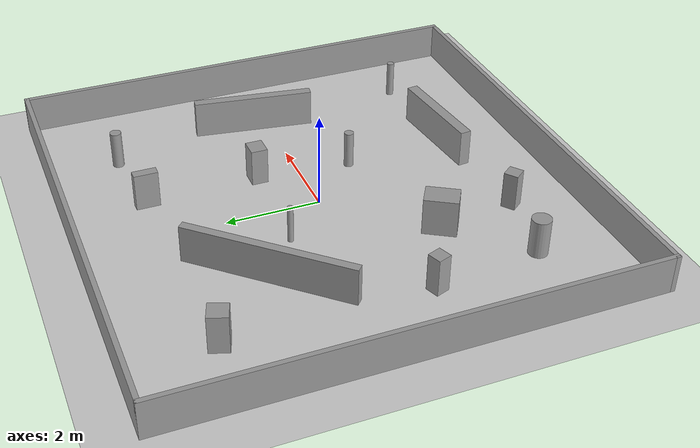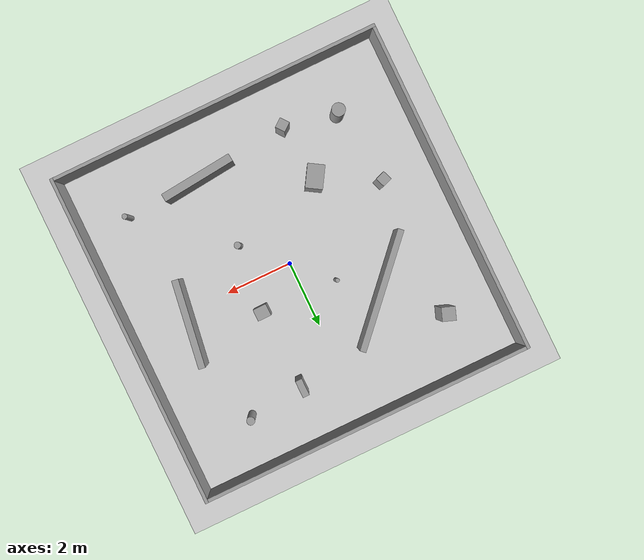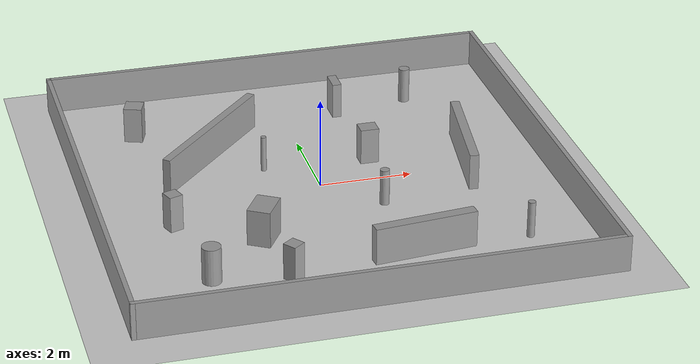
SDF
<sdf version="1.6">
 <world name="default">
  <light name="sun" type="directional">
   <cast_shadows>0</cast_shadows>
   <pose>0 0 10 0 -0 0</pose>
   <diffuse>0.8 0.8 0.8 1</diffuse>
   <specular>0.1 0.1 0.1 1</specular>
   <attenuation>
    <range>1000</range>
    <constant>0.9</constant>
    <linear>0.01</linear>
    <quadratic>0.001</quadratic>
   </attenuation>
   <direction>-0.5 0.5 -1</direction>
  </light>
  <model name="ground_plane">
   <static>1</static>
   <link name="link">
    <collision name="collision">
     <geometry><plane><normal>0 0 1</normal><size>100 100</size></plane></geometry>
     <surface><friction><ode><mu>100</mu><mu2>50</mu2></ode></friction></surface>
    </collision>
    <visual name="visual">
     <cast_shadows>0</cast_shadows>
     <geometry><plane><normal>0 0 1</normal><size>100 100</size></plane></geometry>
     <material>
      <script><uri>file://media/materials/scripts/gazebo.material</uri><name>Gazebo/Grey</name></script>
     </material>
    </visual>
   </link>
  </model>
  <gravity>0 0 -9.8</gravity>
  <magnetic_field>6e-06 2.3e-05 -4.2e-05</magnetic_field>
  <atmosphere type="adiabatic"/>
  <physics name="default_physics" default="0" type="ode">
   <max_step_size>0.001</max_step_size>
   <real_time_factor>1</real_time_factor>
   <real_time_update_rate>1000</real_time_update_rate>
  </physics>
  <scene><ambient>0.4 0.4 0.4 1</ambient><background>0.7 0.7 0.7 1</background><shadows>1</shadows></scene>
  <spherical_coordinates>
   <surface_model>EARTH_WGS84</surface_model>
   <latitude_deg>0</latitude_deg>
   <longitude_deg>0</longitude_deg>
   <elevation>0</elevation>
   <heading_deg>0</heading_deg>
  </spherical_coordinates>
  <model name="train_world1">
   <link name="Wall_0">
    <collision name="Wall_0_Collision">
     <geometry><box><size>10.1 0.1 0.8</size></box></geometry>
     <pose>0 0 0.4 0 -0 0</pose>
    </collision>
    <visual name="Wall_0_Visual">
     <pose>0 0 0.4 0 -0 0</pose>
     <geometry><box><size>10.1 0.1 0.8</size></box></geometry>
     <material>
      <script><uri>file://media/materials/scripts/gazebo.material</uri><name>Gazebo/Grey</name></script>
      <ambient>1 1 1 1</ambient>
     </material>
    </visual>
    <pose>5 0 0 0 0 -1.5708</pose>
   </link>
   <link name="Wall_1">
    <collision name="Wall_1_Collision">
     <geometry><box><size>10.10002 0.1 0.8</size></box></geometry>
     <pose>0 0 0.4 0 -0 0</pose>
    </collision>
    <visual name="Wall_1_Visual">
     <pose>0 0 0.4 0 -0 0</pose>
     <geometry><box><size>10.10002 0.1 0.8</size></box></geometry>
     <material>
      <script><uri>file://media/materials/scripts/gazebo.material</uri><name>Gazebo/Grey</name></script>
      <ambient>1 1 1 1</ambient>
     </material>
    </visual>
    <pose>0 -5 0 0 -0 3.14159</pose>
   </link>
   <link name="Wall_2">
    <collision name="Wall_2_Collision">
     <geometry><box><size>10.1 0.1 0.8</size></box></geometry>
     <pose>0 0 0.4 0 -0 0</pose>
    </collision>
    <visual name="Wall_2_Visual">
     <pose>0 0 0.4 0 -0 0</pose>
     <geometry><box><size>10.1 0.1 0.8</size></box></geometry>
     <material>
      <script><uri>file://media/materials/scripts/gazebo.material</uri><name>Gazebo/Grey</name></script>
      <ambient>1 1 1 1</ambient>
     </material>
    </visual>
    <pose>-5 0 0 0 -0 1.5708</pose>
   </link>
   <link name="Wall_3">
    <collision name="Wall_3_Collision">
     <geometry><box><size>10.1 0.1 0.8</size></box></geometry>
     <pose>0 0 0.4 0 -0 0</pose>
    </collision>
    <visual name="Wall_3_Visual">
     <pose>0 0 0.4 0 -0 0</pose>
     <geometry><box><size>10.1 0.1 0.8</size></box></geometry>
     <material>
      <script><uri>file://media/materials/scripts/gazebo.material</uri><name>Gazebo/Grey</name></script>
      <ambient>1 1 1 1</ambient>
     </material>
    </visual>
    <pose>0 5 0 0 -0 0</pose>
   </link>
   <link name="Box_0">
    <collision name="Box_0_Collision">
     <geometry><box><size>0.4 0.35 0.8</size></box></geometry>
     <pose>0 0 0.4 0 -0 0</pose>
    </collision>
    <visual name="Box_0_Visual">
     <pose>0 0 0.4 0 -0 0</pose>
     <geometry><box><size>0.4 0.35 0.8</size></box></geometry>
     <material>
      <script><uri>file://media/materials/scripts/gazebo.material</uri><name>Gazebo/Grey</name></script>
      <ambient>1 1 1 1</ambient>
     </material>
    </visual>
    <pose>1.3 0.9 0 0 0 0</pose>
   </link>
   <link name="Box_1">
    <collision name="Box_1_Collision">
     <geometry><box><size>0.2 0.5 0.8</size></box></geometry>
     <pose>0 0 0.4 0 -0 0</pose>
    </collision>
    <visual name="Box_1_Visual">
     <pose>0 0 0.4 0 -0 0</pose>
     <geometry><box><size>0.2 0.5 0.8</size></box></geometry>
     <material>
      <script><uri>file://media/materials/scripts/gazebo.material</uri><name>Gazebo/Grey</name></script>
      <ambient>1 1 1 1</ambient>
     </material>
    </visual>
    <pose>1.2 3.3 0 0 0 0</pose>
   </link>
   <link name="Box_2">
    <collision name="Box_2_Collision">
     <geometry><box><size>2.2 0.24 0.8</size></box></geometry>
     <pose>0 0 0.4 0 -0 0</pose>
    </collision>
    <visual name="Box_2_Visual">
     <pose>0 0 0.4 0 -0 0</pose>
     <geometry><box><size>2.2 0.24 0.8</size></box></geometry>
     <material>
      <script><uri>file://media/materials/scripts/gazebo.material</uri><name>Gazebo/Grey</name></script>
      <ambient>1 1 1 1</ambient>
     </material>
    </visual>
    <pose>1.3 -3.3 0 0 0 0.1</pose>
   </link>
   <link name="Box_3">
    <collision name="Box_3_Collision">
     <geometry><box><size>0.2 2.6 0.8</size></box></geometry>
     <pose>0 0 0.4 0 -0 0</pose>
    </collision>
    <visual name="Box_3_Visual">
     <pose>0 0 0.4 0 -0 0</pose>
     <geometry><box><size>0.2 2.6 0.8</size></box></geometry>
     <material>
      <script><uri>file://media/materials/scripts/gazebo.material</uri><name>Gazebo/Grey</name></script>
      <ambient>1 1 1 1</ambient>
     </material>
    </visual>
    <pose>3.3 0.3 0 0 0 -0.15</pose>
   </link>
   <link name="Box_4">
    <collision name="Box_4_Collision">
     <geometry><box><size>0.18 3.6 0.8</size></box></geometry>
     <pose>0 0 0.4 0 -0 0</pose>
    </collision>
    <visual name="Box_4_Visual">
     <pose>0 0 0.4 0 -0 0</pose>
     <geometry><box><size>0.18 3.6 0.8</size></box></geometry>
     <material>
      <script><uri>file://media/materials/scripts/gazebo.material</uri><name>Gazebo/Grey</name></script>
      <ambient>1 1 1 1</ambient>
     </material>
    </visual>
    <pose>-2.0 1.8 0 0 0 -0.75</pose>
   </link>
   <link name="Box_5">
    <collision name="Box_5_Collision">
     <geometry><box><size>0.5 0.7 0.8</size></box></geometry>
     <pose>0 0 0.4 0 -0 0</pose>
    </collision>
    <visual name="Box_5_Visual">
     <pose>0 0 0.4 0 -0 0</pose>
     <geometry><box><size>0.5 0.7 0.8</size></box></geometry>
     <material>
      <script><uri>file://media/materials/scripts/gazebo.material</uri><name>Gazebo/Grey</name></script>
      <ambient>1 1 1 1</ambient>
     </material>
    </visual>
    <pose>-1.7 -1.9 0 0 0 -0.55</pose>
   </link>
   <link name="Box_6">
    <collision name="Box_6_Collision">
     <geometry><box><size>0.4 0.4 0.8</size></box></geometry>
     <pose>0 0 0.4 0 -0 0</pose>
    </collision>
    <visual name="Box_6_Visual">
     <pose>0 0 0.4 0 -0 0</pose>
     <geometry><box><size>0.4 0.4 0.8</size></box></geometry>
     <material>
      <script><uri>file://media/materials/scripts/gazebo.material</uri><name>Gazebo/Grey</name></script>
      <ambient>1 1 1 1</ambient>
     </material>
    </visual>
    <pose>-3.4 3.2 0 0 0 -0.35</pose>
   </link>
   <link name="Box_7">
    <collision name="Box_7_Collision">
     <geometry><box><size>0.3 0.3 0.8</size></box></geometry>
     <pose>0 0 0.4 0 -0 0</pose>
    </collision>
    <visual name="Box_7_Visual">
     <pose>0 0 0.4 0 -0 0</pose>
     <geometry><box><size>0.3 0.3 0.8</size></box></geometry>
     <material>
      <script><uri>file://media/materials/scripts/gazebo.material</uri><name>Gazebo/Grey</name></script>
      <ambient>1 1 1 1</ambient>
     </material>
    </visual>
    <pose>-3.4 -1.0 0 0 0 0.35</pose>
   </link>
   <link name="Box_8">
    <collision name="Box_8_Collision">
     <geometry><box><size>0.3 0.3 0.8</size></box></geometry>
     <pose>0 0 0.4 0 -0 0</pose>
    </collision>
    <visual name="Box_8_Visual">
     <pose>0 0 0.4 0 -0 0</pose>
     <geometry><box><size>0.3 0.3 0.8</size></box></geometry>
     <material>
      <script><uri>file://media/materials/scripts/gazebo.material</uri><name>Gazebo/Grey</name></script>
      <ambient>1 1 1 1</ambient>
     </material>
    </visual>
    <pose>-1.5 -3.6 0 0 0 0.65</pose>
   </link>
   <link name="Cylinder_0">
    <collision name="Cylinder_0_Collision">
     <geometry><cylinder><length>0.8</length><radius>0.2</radius></cylinder></geometry>
     <pose>0 0 0.4 0 -0 0</pose>
    </collision>
    <visual name="Cylinder_0_Visual">
     <pose>0 0 0.4 0 -0 0</pose>
     <geometry><cylinder><length>0.8</length><radius>0.2</radius></cylinder></geometry>
     <material>
      <script><uri>file://media/materials/scripts/gazebo.material</uri><name>Gazebo/Grey</name></script>
      <ambient>1 1 1 1</ambient>
     </material>
    </visual>
    <pose>-3.1 -3.3 0 0 0 0</pose>
   </link>
   <link name="Cylinder_1">
    <collision name="Cylinder_1_Collision">
     <geometry><cylinder><length>0.8</length><radius>0.1</radius></cylinder></geometry>
     <pose>0 0 0.4 0 -0 0</pose>
    </collision>
    <visual name="Cylinder_1_Visual">
     <pose>0 0 0.4 0 -0 0</pose>
     <geometry><cylinder><length>0.8</length><radius>0.1</radius></cylinder></geometry>
     <material>
      <script><uri>file://media/materials/scripts/gazebo.material</uri><name>Gazebo/Grey</name></script>
      <ambient>1 1 1 1</ambient>
     </material>
    </visual>
    <pose>1.1 -1.1 0 0 0 0</pose>
   </link>
   <link name="Cylinder_2">
    <collision name="Cylinder_2_Collision">
     <geometry><cylinder><length>0.8</length><radius>0.12</radius></cylinder></geometry>
     <pose>0 0 0.4 0 -0 0</pose>
    </collision>
    <visual name="Cylinder_2_Visual">
     <pose>0 0 0.4 0 -0 0</pose>
     <geometry><cylinder><length>0.8</length><radius>0.12</radius></cylinder></geometry>
     <material>
      <script><uri>file://media/materials/scripts/gazebo.material</uri><name>Gazebo/Grey</name></script>
      <ambient>1 1 1 1</ambient>
     </material>
    </visual>
    <pose>2.9 3.5 0 0 0 0</pose>
   </link>
   <link name="Cylinder_3">
    <collision name="Cylinder_3_Collision">
     <geometry><cylinder><length>0.8</length><radius>0.06</radius></cylinder></geometry>
     <pose>0 0 0.4 0 -0 0</pose>
    </collision>
    <visual name="Cylinder_3_Visual">
     <pose>0 0 0.4 0 -0 0</pose>
     <geometry><cylinder><length>0.8</length><radius>0.06</radius></cylinder></geometry>
     <material>
      <script><uri>file://media/materials/scripts/gazebo.material</uri><name>Gazebo/Grey</name></script>
      <ambient>1 1 1 1</ambient>
     </material>
    </visual>
    <pose>-1 1 0 0 0 0</pose>
   </link>
   <link name="Cylinder_4">
    <collision name="Cylinder_4_Collision">
     <geometry><cylinder><length>0.8</length><radius>0.08</radius></cylinder></geometry>
     <pose>0 0 0.4 0 -0 0</pose>
    </collision>
    <visual name="Cylinder_4_Visual">
     <pose>0 0 0.4 0 -0 0</pose>
     <geometry><cylinder><length>0.8</length><radius>0.08</radius></cylinder></geometry>
     <material>
      <script><uri>file://media/materials/scripts/gazebo.material</uri><name>Gazebo/Grey</name></script>
      <ambient>1 1 1 1</ambient>
     </material>
    </visual>
    <pose>3.6 -3.2 0 0 0 0</pose>
   </link>
   <static>1</static>
  </model>
 </world>
</sdf>
